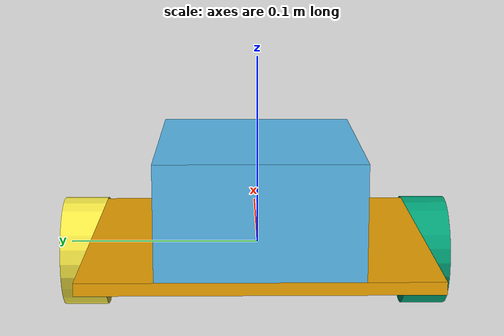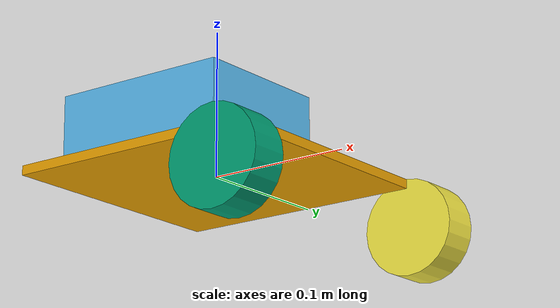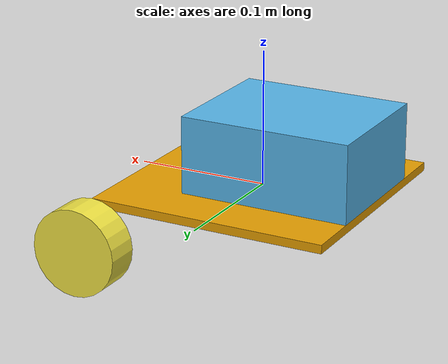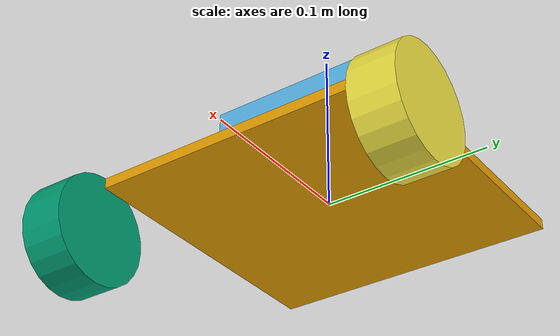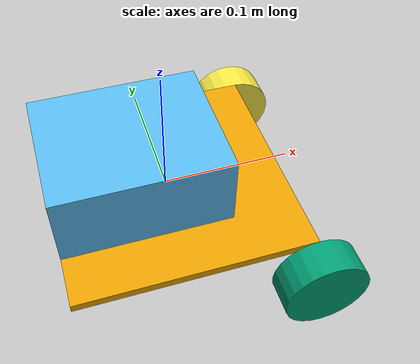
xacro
<?xml version="1.0"?>
<robot xmlns:xacro="http://www.ros.org/wiki/xacro" name="ozymandias">

  <!--central box properties-->
  <xacro:property name="depthBox" value="0.1778" />
  <xacro:property name="widthBox" value="0.1778" />
  <xacro:property name="heightBox" value="0.00635" />
  <!--wheel properties-->
  <xacro:property name="radiusCylinder" value="0.032512" />
  <xacro:property name="lengthCylinder" value="0.026162" />
  <!--post to elevate sensor properties-->
  <xacro:property name="depthPost" value="0.127" />
  <xacro:property name="widthPost" value="0.1016" />
  <xacro:property name="heightPost" value="0.05715" />

  <!--box body-->
  <link name="base_link">
    <visual>
      <geometry>
        <box size="${depthBox} ${widthBox} ${heightBox}"/>
      </geometry>
      <origin rpy="0 0 0" xyz="0 0 0"/>
    </visual>
  </link>

  <!--Post to elevate sensor-->
  <link name="post">
    <visual>
      <geometry>
        <box size="${depthPost} ${widthPost} ${heightPost}"/>
      </geometry>
      <origin rpy="0 0 0" xyz="0 0 0"/>
    </visual>
  </link>

  <!--algorithm for creating wheels-->
  <xacro:macro name="wheel" params="prefix x y">
      <link name="${prefix}Wheel">
        <visual>
          <geometry>
          	<cylinder length="${lengthCylinder}" radius="${radiusCylinder}"/>
          </geometry>
          <origin rpy="1.5707 0 0" xyz="0 0 0"/>
        </visual>
      </link>

      <joint name="${prefix}WheelJoint" type="continuous">
        <parent link="base_link"/>
        <child link="${prefix}Wheel"/>
        <axis xyz="0 ${((widthBox/2)+(lengthCylinder/2))} 0"/>
        <origin xyz="${(depthBox/2)*x} ${((widthBox/2)+(lengthCylinder/2))*y} ${(heightBox/2)-radiusCylinder}"/>
      </joint>
  </xacro:macro>

  <!--Create wheels and joint to the main body using above algorithm-->
  <xacro:wheel prefix="rightFront" x="1" y="-1"/>
  <xacro:wheel prefix="leftFront" x="1" y="1"/>

  <joint name="postToBodyJoint" type="fixed">
    <parent link="base_link"/>
    <child link="post"/>
    <origin xyz="${depthPost/2+depthBox/2 - depthBox} 0 ${(heightBox/2)+(heightPost/2)}"/>
  </joint>

  <!-- need to make a placeholder link for the laser frame -->
<link name="laser" />
<joint name="laserToPost" type="fixed">
    <parent link="post"/>
    <child link="laser"/>
    <origin rpy="0 0 3.1415" xyz="${depthPost/-4} 0 ${heightPost/2 + 0.0381}"/>
</joint>

</robot>
